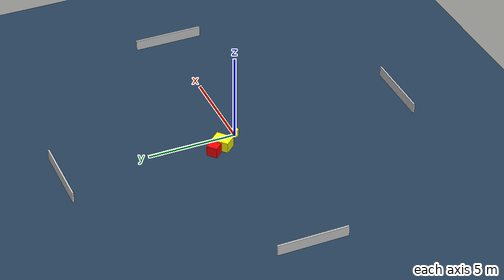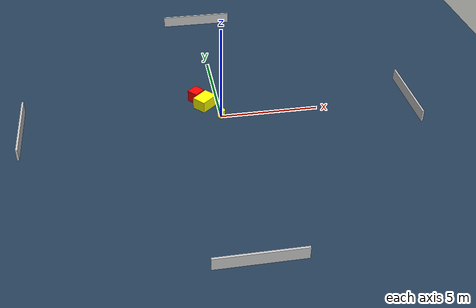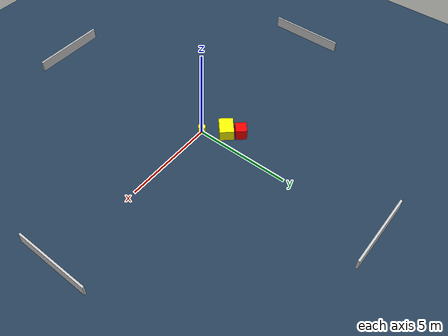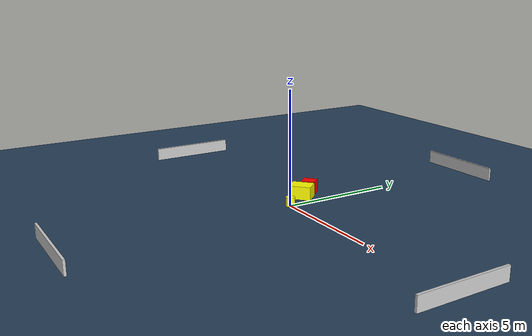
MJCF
<?xml version="1.0" ?>
<mujoco model="generated_environment">
  <option timestep="0.01" integrator="RK4" cone="elliptic"/>
  <default>
    <geom density="1"/>
  </default>
  <asset>
    <texture builtin="gradient" height="3072" name="skybox" rgb1="0.3 0.5 0.7" rgb2="0 0 0" type="skybox" width="512"/>
    <texture builtin="checker" height="300" name="groundplane" rgb1="0.2 0.3 0.4" rgb2="0.1 0.2 0.3" type="2d" width="300"/>
    <material name="groundplane" reflectance="0.2" texrepeat="5 5" texture="groundplane"/>
  </asset>
  <worldbody>
    <light dir="0 0 -1" directional="true" pos="0 0 1.5"/>
    <geom condim="3" friction="0.5 0.005 0.001" material="groundplane" name="floor" pos="0 0 0" size="0 0 0.05" type="plane"/>
    <body name="walls">
      <geom name="wall_1" condim="4" pos="-10.0 0.0 0.3" rgba="0.800000011920929 0.800000011920929 0.800000011920929 1.0" size="0.05 2.0 0.3" type="box"/>
      <geom name="wall_2" condim="4" pos="10.0 0.0 0.3" rgba="0.800000011920929 0.800000011920929 0.800000011920929 1.0" size="0.05 2.0 0.3" type="box"/>
      <geom name="wall_3" condim="4" pos="0.0 -10.0 0.3" rgba="0.800000011920929 0.800000011920929 0.800000011920929 1.0" size="2.0 0.05 0.3" type="box"/>
      <geom name="wall_4" condim="4" pos="0.0 10.0 0.3" rgba="0.800000011920929 0.800000011920929 0.800000011920929 1.0" size="2.0 0.05 0.3" type="box"/>
    </body>
    <body name="robot">
      <joint name="joint_x" type="slide" pos="0 0 0" axis="1 0 0"/>
      <joint name="joint_y" type="slide" pos="0 0 0" axis="0 1 0"/>
      <geom name="robot" type="cylinder" pos="0.0 0.0 0.2" size="0.2 0.2 0.0" mass="5.0" friction="1.0 0.005 0.0001" condim="4" rgba="1.0 1.0 0.0 1.0"/>
    </body>
    <body name="obstacle_1_movable">
      <geom name="obstacle_1_movable" condim="4" pos="-0.702239891050503 1.0290673290137373 0.3" euler="0 0 221.2160661146804" friction="0.0 0.005 0.001" rgba="1.0 1.0 0.0 1.0" size="0.49124925517540236 0.36742372334885376 0.3" type="box" mass="0.1"/>
      <joint type="free"/>
    </body>
    <body name="obstacle_2_static">
      <geom name="obstacle_2_static" condim="4" pos="-1.079491222871185 1.6818871165545828 0.3" euler="0 0 130.62405881842483" friction="0.0 0.005 0.001" rgba="1.0 0.0 0.0 1.0" size="0.29028003325564483 0.3131763903814867 0.3" type="box"/>
    </body>
  </worldbody>
  <actuator>
    <motor name="actuator_x" joint="joint_x" gear="1" ctrlrange="-1 1"/>
    <motor name="actuator_y" joint="joint_y" gear="1" ctrlrange="-1 1"/>
  </actuator>
</mujoco>
